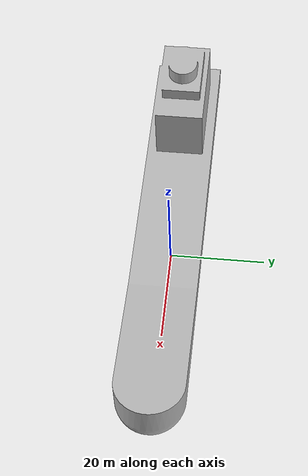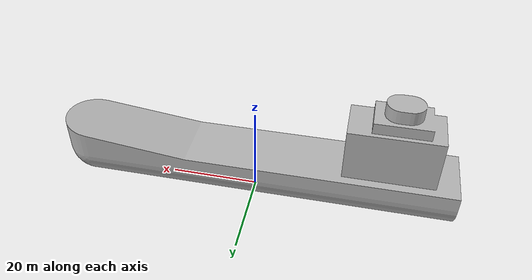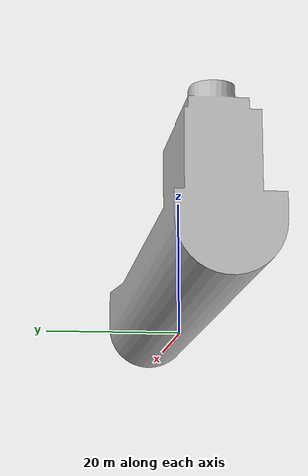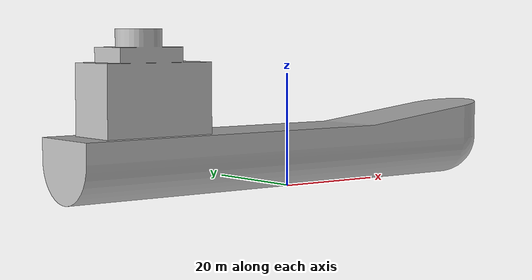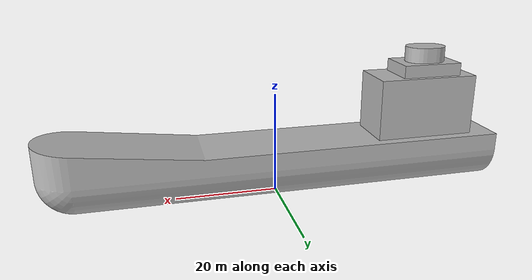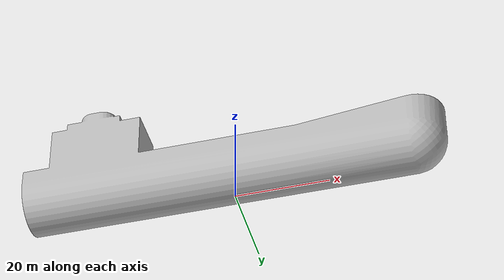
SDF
<?xml version="1.0"?>
<sdf version="1.9">
  <model name="super_tanker_vessel">
    <static>true</static>
    <link name="base_link">
      <visual name="visual">
        <geometry>
          <mesh>
            <uri>meshes/SuperTanker.obj</uri>
            <scale>0.001 0.001 0.001</scale>
          </mesh>
        </geometry>
      </visual>
      <collision name="collision">
        <pose>0 0 14 0 0 0</pose>
        <geometry>
          <box>
            <size>90 14 28</size>
          </box>
        </geometry>
      </collision>
    </link>
  </model>
</sdf>
